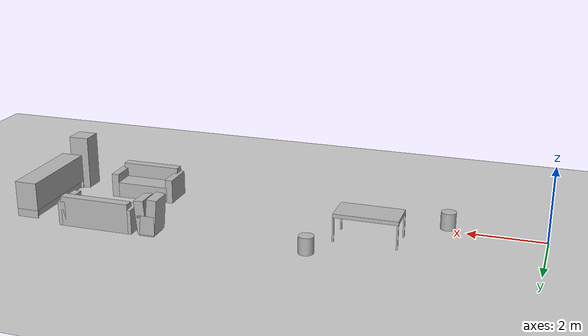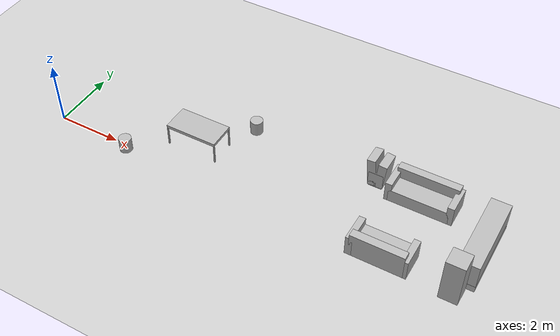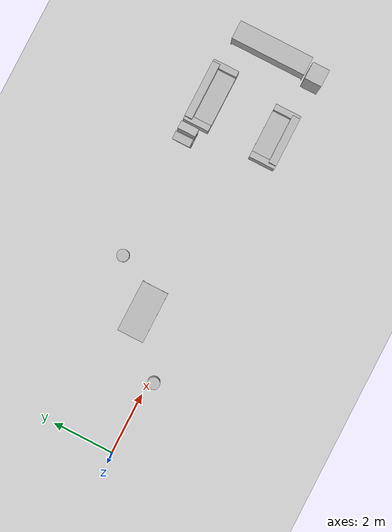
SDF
<sdf version="1.6">
 <world name="impuls">
  <include><name>floor</name><uri>model://ground_plane</uri></include>
  <include>
   <pose>4.275 1.125 0 0 0 3.14159265359</pose>
   <name>dinner_table</name>
   <uri>model://impuls/puck_table</uri>
  </include>
  <include>
   <pose>13.1 1.3 0 0 0 3.14159265359</pose>
   <name>kitchen_cabinet</name>
   <uri>model://impuls/kitchen</uri>
  </include>
  <include>
   <pose>12.9 -0.25 0 0 0 3.14159265359</pose>
   <name>fridge</name>
   <uri>model://impuls/fridge</uri>
  </include>
  <include>
   <pose>11.03 2.30 0 0 0 -1.57079632679</pose>
   <name>couch_long</name>
   <uri>model://impuls/couch_long</uri>
  </include>
  <include>
   <pose>10.80 0.0 0 0 0 1.57079632679</pose>
   <name>couch_short</name>
   <uri>model://impuls/couch_short</uri>
  </include>
  <include>
   <pose>9.60 2.43 0 0 0 -1.57079632679</pose>
   <name>trashbin_high</name>
   <uri>model://impuls/tue_trashbin</uri>
  </include>
  <include><pose>2.5 -0.15 0 0 0 0.9</pose><name>trashbin</name><uri>model://impuls/trashbin</uri></include>
  <include><pose>5.5 2.45 0 0 0 -2.6</pose><name>trashbin1</name><uri>model://impuls/trashbin</uri></include>
  <light type="directional" name="sun">
   <pose>0 0 10 0 0 0</pose>
   <diffuse>0.8 0.8 0.8 1</diffuse>
   <specular>0.2 0.2 0.2 1</specular>
   <direction>0.5 0.1 -0.9</direction>
   <attenuation>
    <range>1000</range>
    <constant>0.9</constant>
    <linear>0.01</linear>
    <quadratic>0.001</quadratic>
   </attenuation>
  </light>
  <model name="living_room" type="room">
   <link name="in">
    <virtual_volume name="in_vv">
     <geometry><box><size>4.58 2.7 2.5</size></box></geometry>
     <pose>-1.04 0.1 0.0 0 0 0</pose>
    </virtual_volume>
   </link>
   <pose>10.6 1.25 1.25 0 0 0</pose>
   <static>true</static>
  </model>
  <model name="kitchen" type="room">
   <link name="in">
    <virtual_volume name="in_vv">
     <geometry><box><size>1.55 2.7 2.5</size></box></geometry>
     <pose>-0.375 0.05 0.0 0 0 0</pose>
    </virtual_volume>
   </link>
   <pose>13.0 1.3 1.25 0 0 0</pose>
   <static>true</static>
  </model>
  <model name="dining_room" type="room">
   <link name="in">
    <virtual_volume name="in_vv">
     <geometry><box><size>4.07 2.7 2.5</size></box></geometry>
     <pose>0.035 0.1 0.0 0 0 0</pose>
    </virtual_volume>
   </link>
   <pose>5.0 1.25 1.25 0 0 0</pose>
   <static>true</static>
  </model>
  <model name="office" type="room">
   <link name="in">
    <virtual_volume name="in_vv">
     <geometry><box><size>3.25 2.7 2.5</size></box></geometry>
     <pose>-0.125 -0.2 0.0 0 0 0</pose>
    </virtual_volume>
   </link>
   <pose>1.5 1.55 1.25 0 0 0</pose>
   <static>true</static>
  </model>
  <model name="initial_pose" type="waypoint"><pose>0.2 0.5 0 0 0 0</pose><static>true</static></model>
  <model name="starting_pose" type="waypoint"><pose>1.5 0.5 0 0 0 0</pose><static>true</static></model>
  <model name="entry_door" type="waypoint"><pose>6.0 0.50 0 0 0 0</pose><static>true</static></model>
  <model name="rips_point_1" type="waypoint"><pose>3.0 1.0 0 0 0 0</pose><static>true</static></model>
  <model name="rips_point_2" type="waypoint"><pose>2.5 1.0 0 0 0 0</pose><static>true</static></model>
  <model name="rips_point_3" type="waypoint"><pose>3.0 0.0 0 0 0 0</pose><static>true</static></model>
  <model name="exit_1_rips" type="waypoint"><pose>0.5 -1.0 0 0 0 0</pose><static>true</static></model>
  <model name="exit_2_rips" type="waypoint"><pose>6.0 -1.0 0 0 0 0</pose><static>true</static></model>
  <model name="exit_3_rips" type="waypoint"><pose>7.0 -1.0 0 0 0 0</pose><static>true</static></model>
  <model name="helper_take_out_garbage" type="waypoint">
   <pose>3.0 0.90 0 0 0 0</pose>
   <static>true</static>
  </model>
  <model name="take_out_garbage_drop_zone" type="waypoint">
   <pose>6 -1.0 0 0 0 0</pose>
   <static>true</static>
  </model>
  <physics type="ode">
   <real_time_update_rate>333.0</real_time_update_rate>
   <max_step_size>0.003</max_step_size>
   <ode><solver><type>quick</type><iters>100</iters></solver><constraints><cfm>0.0001</cfm></constraints></ode>
  </physics>
 </world>
</sdf>

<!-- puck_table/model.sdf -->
<sdf version="1.6">
  <model name="impuls/puck_table"  type="table">
    <static>true</static>
    <link name="1_link">
      <collision name="1_col">
        <geometry>
          <box>
            <size>1.65 0.85 0.1</size>
          </box>
        </geometry>
      </collision>
      <visual name="1_vis">
        <geometry>
          <box>
            <size>1.65 0.85 0.1</size>
          </box>
        </geometry>
      </visual>
      <pose>0.0 0.0 0.69 0 0 0</pose>
    </link>
    <link name="2_link">
      <collision name="2_col">
        <geometry>
          <box>
            <size>0.04 0.04 0.64</size>
          </box>
        </geometry>
      </collision>
      <visual name="2_vis">
        <geometry>
          <box>
            <size>0.04 0.04 0.64</size>
          </box>
        </geometry>
      </visual>
      <pose>-0.805 -0.405 0.32 0 0 0</pose>
    </link>
    <link name="3_link">
      <collision name="3_col">
        <geometry>
          <box>
            <size>0.04 0.04 0.64</size>
          </box>
        </geometry>
      </collision>
      <visual name="3_vis">
        <geometry>
          <box>
            <size>0.04 0.04 0.64</size>
          </box>
        </geometry>
      </visual>
      <pose>0.805 -0.405 0.32 0 0 0</pose>
    </link>
    <link name="4_link">
      <collision name="4_col">
        <geometry>
          <box>
            <size>0.04 0.04 0.64</size>
          </box>
        </geometry>
      </collision>
      <visual name="4_vis">
        <geometry>
          <box>
            <size>0.04 0.04 0.64</size>
          </box>
        </geometry>
      </visual>
      <pose>-0.805 0.405 0.32 0 0 0</pose>
    </link>
    <link name="5_link">
      <collision name="5_col">
        <geometry>
          <box>
            <size>0.04 0.04 0.64</size>
          </box>
        </geometry>
      </collision>
      <visual name="5_vis">
        <geometry>
          <box>
            <size>0.04 0.04 0.64</size>
          </box>
        </geometry>
      </visual>
      <pose>0.805 0.405 0.32 0 0 0</pose>
    </link>
    <link name="on_top_of">
      <virtual_volume name="on_top_of_vv">
        <geometry>
          <box>
            <size>1.63 0.79 0.25</size>
          </box>
        </geometry>
        <pose>0.0 0.0 0.885 0 0 0</pose>
      </virtual_volume>
    </link>
    <link name="in_front_of">
      <virtual_volume name="in_front_of_vv">
        <geometry>
          <box>
            <size>0.5 0.65 0.01</size>
          </box>
        </geometry>
        <pose>1.225 0.0 0.005 0 0 0</pose>
      </virtual_volume>
    </link>
  </model>
</sdf>

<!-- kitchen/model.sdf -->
<sdf version="1.6">
  <model name="impuls/kitchen" type="counter">
    <link name="1_link">
      <collision name="1_col">
        <geometry>
          <box>
            <size>0.525 2.40 0.21</size>
          </box>
        </geometry>
      </collision>
      <visual name="1_vis">
        <geometry>
          <box>
            <size>0.525 2.40 0.21</size>
          </box>
        </geometry>
      </visual>
      <pose>-0.0375 0.0 0.105 0 0 0</pose>
    </link>
    <link name="2_link">
      <collision name="2_col">
        <geometry>
          <box>
            <size>0.6 2.44 0.75</size>
          </box>
        </geometry>
      </collision>
      <visual name="2_vis">
        <geometry>
          <box>
            <size>0.6 2.44 0.75</size>
          </box>
        </geometry>
      </visual>
      <pose>0.0 0.0 0.585 0 0 0</pose>
    </link>
    <link name="3_link">
      <collision name="3_col">
        <geometry>
          <box>
            <size>0.6 0.02 0.21</size>
          </box>
        </geometry>
      </collision>
      <visual name="3_vis">
        <geometry>
          <box>
            <size>0.6 0.02 0.21</size>
          </box>
        </geometry>
      </visual>
      <pose>0.0 1.21 0.105 0 0 0</pose>
    </link>
    <link name="4_link">
      <collision name="4_col">
        <geometry>
          <box>
            <size>0.6 0.02 0.21</size>
          </box>
        </geometry>
      </collision>
      <visual name="4_vis">
        <geometry>
          <box>
            <size>0.6 0.02 0.21</size>
          </box>
        </geometry>
      </visual>
      <pose>0.0 -1.21 0.105 0 0 0</pose>
    </link>
    <link name="in_front_of">
      <virtual_volume name="in_front_of_vv">
        <geometry>
          <box>
            <size>0.4 2.0 0.01</size>
          </box>
        </geometry>
        <pose>0.6 0.0 0.005 0 0 0</pose>
      </virtual_volume>
    </link>
    <link name="on_top_of">
      <virtual_volume name="on_top_of_vv">
        <geometry>
          <box>
            <size>0.58 2.40 0.5</size>
          </box>
        </geometry>
        <pose>0.0 0.0 1.23 0 0 0</pose>
      </virtual_volume>
    </link>
    <static>true</static>
  </model>
</sdf>

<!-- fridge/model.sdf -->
<sdf version="1.6">
  <model name="impuls/fridge" type="refrigerator">
    <link name="1_link">
      <collision name="1_col">
        <geometry>
          <box>
            <size>0.55 0.55 1.45</size>
          </box>
        </geometry>
      </collision>
      <visual name="1_vis">
        <geometry>
          <box>
            <size>0.55 0.55 1.45</size>
          </box>
        </geometry>
      </visual>
      <pose>0.0 0.0 0.725 0 0 0</pose>
    </link>
    <static>true</static>
  </model>
</sdf>

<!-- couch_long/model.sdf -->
<sdf version="1.6">
  <model name="impuls/couch_long">
    <link name="back">
      <collision name="back_col">
        <geometry>
          <box>
            <size>0.25 1.86 0.79</size>
          </box>
        </geometry>
      </collision>
      <visual name="back_vis">
        <geometry>
          <box>
            <size>0.25 1.86 0.79</size>
          </box>
        </geometry>
      </visual>
      <pose>-0.30 0.0 0.395 0 0 0</pose>
    </link>
    <link name="in_front_of">
      <virtual_volume name="in_front_of_vv">
        <geometry>
          <box>
            <size>0.2 1.6 0.01</size>
          </box>
        </geometry>
        <pose>0.65 0.0 0.005 0 0 0</pose>
      </virtual_volume>
    </link>
    <link name="side_left">
     <collision name="side_left_col">
        <geometry>
          <box>
            <size>0.85 0.20 0.65</size>
          </box>
        </geometry>
      </collision>
      <visual name="side_left_vis">
        <geometry>
          <box>
            <size>0.85 0.20 0.65</size>
          </box>
        </geometry>
      </visual>
      <pose>0 -0.925 0.325 0 0 0</pose>
    </link>
    <link name="side_right">
      <collision name="side_right_col">
        <geometry>
          <box>
            <size>0.85 0.20 0.65</size>
          </box>
        </geometry>
      </collision>
      <visual name="side_right_vis">
        <geometry>
          <box>
            <size>0.85 0.20 0.65</size>
          </box>
        </geometry>
      </visual>
    <pose>0 0.925 0.325 0 0 0</pose>
    </link>
    <link name="seat">
      <collision name="seat_col">
        <geometry>
          <box>
            <size>0.6 1.84 0.42</size>
          </box>
        </geometry>
      </collision>
      <visual name="seat_vis">
        <geometry>
          <box>
              <size>0.6 1.84 0.42</size>
          </box>
        </geometry>
      </visual>
      <pose>0.125 0 0.21 0 0 0</pose>
    </link>
    <link name="on_top_of">
      <virtual_volume name="on_top_of_vv">
        <geometry>
          <box>
            <size>0.60 1.64 0.3</size>
          </box>
        </geometry>
        <pose>0.125 0.0 0.57 0 0 0</pose>
      </virtual_volume>
    </link>
    <link name="on_top_of_couch_long_left">
     <virtual_volume name="on_top_of_couch_long_left_vv">
        <geometry>
          <box>
            <size>0.60 0.80 0.3</size>
          </box>
        </geometry>
        <pose>0.125 0.41 0.57 0 0 0</pose>
      </virtual_volume>
    </link>
    <link name="on_top_of_couch_long_right">
      <virtual_volume name="on_top_of_couch_long_right_vv">
        <geometry>
          <box>
            <size>0.60 0.80 0.3</size>
          </box>
        </geometry>
        <pose>0.125 -0.41 0.57 0 0 0</pose>
      </virtual_volume>
    </link>
    <static>true</static>
  </model>
</sdf>

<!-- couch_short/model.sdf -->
<sdf version="1.6">
  <model name="impuls/couch_short">
    <link name="back">
      <collision name="back_col">
        <geometry>
          <box>
            <size>0.25 1.6 0.79</size>
          </box>
        </geometry>
      </collision>
      <visual name="back_vis">
        <geometry>
          <box>
            <size>0.25 1.6 0.79</size>
          </box>
        </geometry>
      </visual>
      <pose>-0.3 0.0 0.395 0 0 0</pose>
    </link>
    <link name="side_right">
      <collision name="side_right_col">
        <geometry>
          <box>
            <size>0.85 0.20 0.65</size>
          </box>
        </geometry>
      </collision>
      <visual name="side_right_vis">
        <geometry>
          <box>
            <size>0.85 0.20 0.65</size>
          </box>
        </geometry>
      </visual>
      <pose>0.0 0.80 0.325 0 0 0</pose>
    </link>
    <link name="side_left">
      <collision name="side_left_col">
        <geometry>
          <box>
            <size>0.85 0.20 0.65</size>
          </box>
        </geometry>
      </collision>
      <visual name="side_left_vis">
        <geometry>
          <box>
            <size>0.85 0.20 0.65</size>
          </box>
        </geometry>
      </visual>
      <pose>-0 -0.80 0.325 0 0 0</pose>
    </link>
    <link name="seat">
      <collision name="seat_col">
        <geometry>
          <box>
            <size>0.60 1.46 0.42</size>
          </box>
        </geometry>
      </collision>
      <visual name="seat_vis">
        <geometry>
          <box>
            <size>0.60 1.46 0.42</size>
          </box>
        </geometry>
      </visual>
      <pose>0.125 0 0.21 0 0 0</pose>
    </link>
    <link name="in_front_of">
      <virtual_volume name="in_front_of_vv">
        <geometry>
          <box>
            <size>0.2 1.55 0.01</size>
          </box>
        </geometry>
        <pose>0.65 0.0 0.005 0 0 0</pose>
      </virtual_volume>
    </link>
    <link name="on_top_of">
      <virtual_volume name="on_top_of_vv">
        <geometry>
          <box>
            <size>0.60 1.40 0.3</size>
          </box>
        </geometry>
        <pose>0.125 0.0 0.57 0 0 0</pose>
      </virtual_volume>
    </link>
    <link name="on_top_of_left">
      <virtual_volume name="on_top_of_left_vv">
        <geometry>
          <box>
            <size>0.60 0.69 0.3</size>
          </box>
        </geometry>
        <pose>0.125 0.35 0.57 0 0 0</pose>
      </virtual_volume>
    </link>
    <link name="on_top_of_right">
      <virtual_volume name="on_top_of_right_vv">
        <geometry>
          <box>
            <size>0.60 0.69 0.3</size>
          </box>
        </geometry>
        <pose>0.125 -0.35 0.57 0 0 0</pose>
      </virtual_volume>
    </link>
    <static>true</static>
  </model>
</sdf>

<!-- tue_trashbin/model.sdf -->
<sdf version="1.6">
  <model name="impuls/tue_trashbin">
    <static>true</static>
    <link name="1_link">
      <collision name="1_col">
        <geometry>
          <box>
            <size>0.55 0.4 0.04</size>
          </box>
        </geometry>
      </collision>
      <visual name="1_vis">
        <geometry>
          <box>
            <size>0.55 0.4 0.04</size>
          </box>
        </geometry>
      </visual>
      <pose>0.0 0.0 0.02 0 0 0</pose>
    </link>
    <link name="2_link">
      <collision name="2_col">
        <geometry>
          <box>
            <size>0.59 0.46 0.505</size>
          </box>
        </geometry>
      </collision>
      <visual name="2_vis">
        <geometry>
          <box>
            <size>0.59 0.46 0.505</size>
          </box>
        </geometry>
      </visual>
      <pose>0.0 0.0 0.2925 0 0 0</pose>
    </link>
    <link name="3_link">
      <collision name="3_col">
        <geometry>
          <box>
            <size>0.59 0.26 0.94</size>
          </box>
        </geometry>
      </collision>
      <visual name="3_vis">
        <geometry>
          <box>
            <size>0.59 0.26 0.94</size>
          </box>
        </geometry>
      </visual>
      <pose>0.0 -0.143 0.52 0.09 0 0</pose>
    </link>
    <link name="4_link">
      <collision name="4_col">
        <geometry>
          <box>
            <size>0.59 0.26 0.88</size>
          </box>
        </geometry>
      </collision>
      <visual name="4_vis">
        <geometry>
          <box>
            <size>0.59 0.26 0.88</size>
          </box>
        </geometry>
      </visual>
      <pose>0.0 0.14 0.49 -0.09 0 0</pose>
    </link>
    <link name="in_front_of">
      <virtual_volume name="in_front_of_vv">
        <geometry>
          <box>
            <size>0.2 0.25 0.01</size>
          </box>
        </geometry>
        <pose>0.795 0.0 0.005 0 0 0</pose>
      </virtual_volume>
    </link>
  </model>
</sdf>

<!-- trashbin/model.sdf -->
<sdf version="1.6">
  <model name="impuls/trashbin">
    <link name="1_link">
      <collision name="1_col">
        <geometry>
          <cylinder>
            <length>0.45</length>
            <radius>0.195</radius>
          </cylinder>
        </geometry>
      </collision>
      <visual name="1_vis">
        <geometry>
          <cylinder>
            <length>0.45</length>
            <radius>0.195</radius>
          </cylinder>
        </geometry>
      </visual>
      <pose>0 0 0.25 0 0 0</pose>
    </link>
    <static>true</static>
    <link name="on_top_of">
      <virtual_volume name="on_top_of_vv">
        <geometry>
          <box>
            <size>0.3 0.3 0.17</size>
          </box>
        </geometry>
        <pose>0.0 0.0 0.5 0 0 0</pose>
      </virtual_volume>
    </link>
    <link name="in_front_of">
      <virtual_volume name="in_front_of_vv">
        <geometry>
          <box>
            <size>0.05 0.05 0.01</size>
          </box>
        </geometry>
      </virtual_volume>
      <pose>0.65 0 0 0 0 0</pose>
    </link>
  </model>
</sdf>
